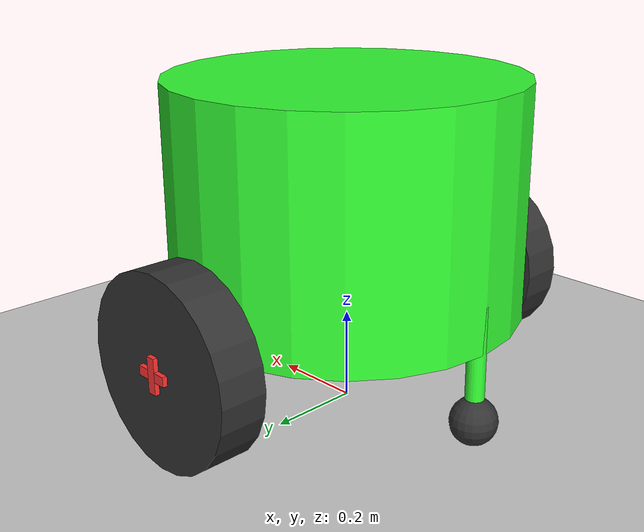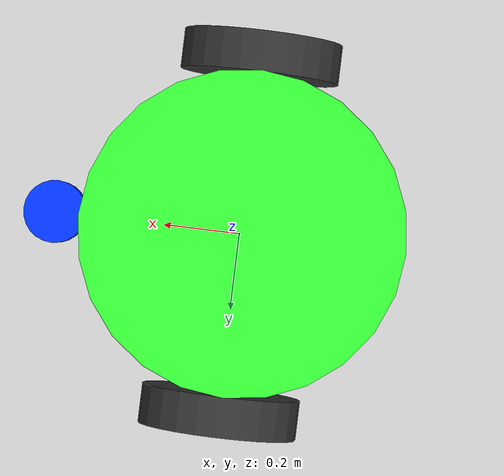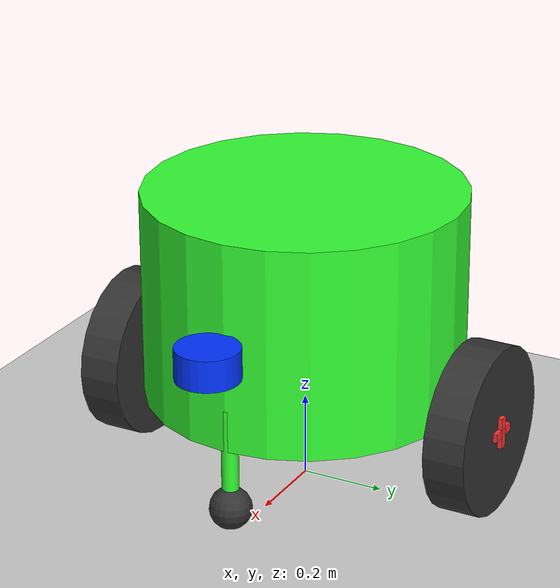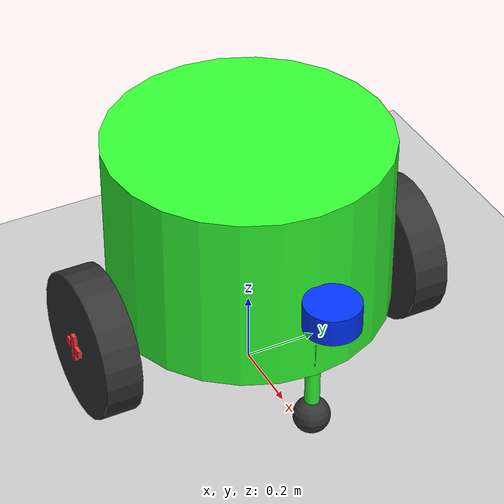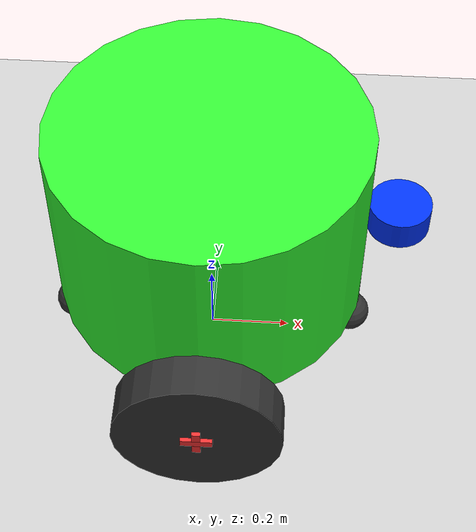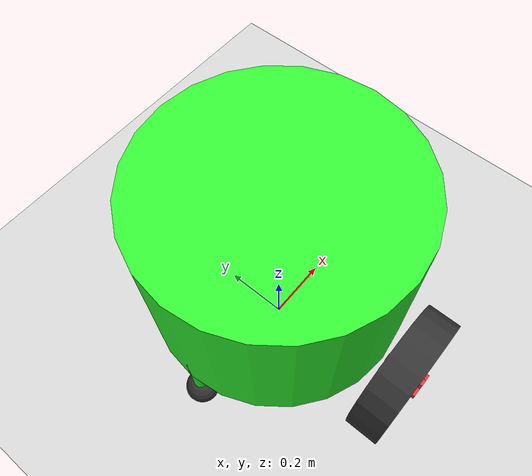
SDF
<?xml version="1.0"?>
<sdf version='1.11'>
  <world name='empty'>
    <physics name='1ms' type='ignored'>
      <max_step_size>0.001</max_step_size>
      <real_time_factor>1</real_time_factor>
      <real_time_update_rate>1000</real_time_update_rate>
    </physics>
    <plugin name='gz::sim::systems::Physics' filename='gz-sim-physics-system'/>
    <plugin name='gz::sim::systems::UserCommands' filename='gz-sim-user-commands-system'/>
    <plugin name='gz::sim::systems::SceneBroadcaster' filename='gz-sim-scene-broadcaster-system'/>
    <plugin name='gz::sim::systems::Contact' filename='gz-sim-contact-system'/>
    <gravity>0 0 -9.8</gravity>
    <magnetic_field>6e-06 2.3e-05 -4.2e-05</magnetic_field>
    <atmosphere type='adiabatic'/>

    <plugin filename="gz-sim-navsat-system" name="gz::sim::systems::NavSat"/>
    <spherical_coordinates>
      <surface_model>EARTH_WGS84</surface_model>
      <world_frame_orientation>ENU</world_frame_orientation>
      <latitude_deg>45.0</latitude_deg>
      <longitude_deg>-81.0</longitude_deg>
      <elevation>0.0</elevation>
      <heading_deg>0.0</heading_deg>
    </spherical_coordinates>

    <scene>
      <ambient>0.400000006 0.400000006 0.400000006 1</ambient>
      <background>0.699999988 0.699999988 0.699999988 1</background>
      <sky></sky>
      <shadows>false</shadows>
    </scene>
    <model name='ground_plane'>
      <static>true</static>
      <link name='link'>
        <collision name='collision'>
          <geometry>
            <plane>
              <normal>0 0 1</normal>
              <size>1000 1000</size>
            </plane>
          </geometry>
          <surface>
            <friction>
              <ode/>
            </friction>
            <bounce/>
            <contact/>
          </surface>
        </collision>
        <visual name='visual'>
          <geometry>
            <plane>
              <normal>0 0 1</normal>
              <size>1000 1000</size>
            </plane>
          </geometry>
          <material>
            <ambient>0.8 0.8 0.8 1</ambient>
            <diffuse>0.8 0.8 0.8 1</diffuse>
            <specular>0.8 0.8 0.8 1</specular>
          </material>
        </visual>
        <pose>0 0 0 0 -0 0</pose>
        <inertial>
          <pose>0 0 0 0 -0 0</pose>
          <mass>1</mass>
          <inertia>
            <ixx>1</ixx>
            <ixy>0</ixy>
            <ixz>0</ixz>
            <iyy>1</iyy>
            <iyz>0</iyz>
            <izz>1</izz>
          </inertia>
        </inertial>
        <enable_wind>false</enable_wind>
      </link>
      <pose>0 0 0 0 -0 0</pose>
      <self_collide>false</self_collide>
    </model>
    <light name='sun' type='directional'>
      <pose>0 0 10 0 -0 0</pose>
      <cast_shadows>true</cast_shadows>
      <intensity>1</intensity>
      <direction>-0.5 0.1 -0.9</direction>
      <diffuse>0.8 0.8 0.8 1</diffuse>
      <specular>0.2 0.2 0.2 1</specular>
      <attenuation>
        <range>1000</range>
        <linear>0.01</linear>
        <constant>0.90000000000000002</constant>
        <quadratic>0.001</quadratic>
      </attenuation>
      <spot>
        <inner_angle>0</inner_angle>
        <outer_angle>0</outer_angle>
        <falloff>0</falloff>
      </spot>
    </light>

    <model name="roundbot">
      <self_collide>true</self_collide>
      <pose>0 0 0 0 0 0</pose>
      <include merge="true">
        <uri>package://roundbot_description/models/roundbot</uri>
        <experimental:params>
            <sensor element_id="chassis" action="add" name="navsat_sensor" type="navsat">
              <gz_frame_id>base_footprint</gz_frame_id>
              <always_on>1</always_on>
              <update_rate>5</update_rate>
              <topic>navsat</topic>
            </sensor>
        </experimental:params>
      </include>
    </model>
  </world>
</sdf>

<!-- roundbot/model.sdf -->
<sdf version="1.11">
  <model name='diff_drive'>
    <link name="base_footprint">
      <pose>0 0 0 0 0 0</pose>
    </link>

    <link name="chassis">
      <pose>0 0 0.475 0 0 0</pose>

      <visual name="visual_chassis">
        <geometry>
          <cylinder>
            <radius>0.38</radius>
            <length>0.5</length>
          </cylinder>
        </geometry>

        <material>
          <ambient>0.2 1.0 0.2 1</ambient>
          <diffuse>0.2 1.0 0.2 1</diffuse>
          <specular>0.2 1.0 0.2 1</specular>
        </material>
      </visual>
      <visual name="front_caster_post">
        <pose>0.36 0 -0.25 0 0 0</pose>
        <geometry>
          <cylinder>
            <radius>0.02</radius>
            <length>0.2</length>
          </cylinder>
        </geometry>

        <material>
          <ambient>0.2 1.0 0.2 1</ambient>
          <diffuse>0.2 1.0 0.2 1</diffuse>
          <specular>0.2 1.0 0.2 1</specular>
        </material>
      </visual>
      <visual name="visual_front_caster">
        <pose>0.36 0 -0.4 0 0 0</pose>
        <geometry>
          <sphere>
            <radius>0.05</radius>
          </sphere>
        </geometry>

        <material>
          <ambient>0.2 0.2 0.2 1</ambient>
          <diffuse>0.2 0.2 0.2 1</diffuse>
          <specular>0.2 0.2 0.2 1</specular>
        </material>
      </visual>
      <visual name="rear_caster_post">
        <pose>-0.36 0 -0.25 0 0 0</pose>
        <geometry>
          <cylinder>
            <radius>0.02</radius>
            <length>0.2</length>
          </cylinder>
        </geometry>

        <material>
          <ambient>0.2 1.0 0.2 1</ambient>
          <diffuse>0.2 1.0 0.2 1</diffuse>
          <specular>0.2 1.0 0.2 1</specular>
        </material>
      </visual>
      <visual name="visual_rear_caster">
        <pose>-0.36 0 -0.4 0 0 0</pose>
        <geometry>
          <sphere>
            <radius>0.05</radius>
          </sphere>
        </geometry>

        <material>
          <ambient>0.2 0.2 0.2 1</ambient>
          <diffuse>0.2 0.2 0.2 1</diffuse>
          <specular>0.2 0.2 0.2 1</specular>
        </material>
      </visual>

      <collision name="collision_chassis">
        <geometry>
          <cylinder>
            <radius>0.38</radius>
            <length>0.5</length>
          </cylinder>
        </geometry>
      </collision>
      <collision name="collision_front_caster">
        <pose>0.36 0 -0.4 0 0 0</pose>
        <geometry>
          <sphere>
            <radius>0.05</radius>
          </sphere>
        </geometry>
        <surface>
          <friction>
            <ode>
              <mu>0</mu>
              <mu2>0</mu2>
            </ode>
          </friction>
        </surface>
      </collision>
      <collision name="collision_rear_caster">
        <pose>-0.36 0 -0.4 0 0 0</pose>
        <geometry>
          <sphere>
            <radius>0.05</radius>
          </sphere>
        </geometry>
        <surface>
          <friction>
            <ode>
              <mu>0</mu>
              <mu2>0</mu2>
            </ode>
          </friction>
        </surface>
      </collision>

      <inertial>
        <mass>5.0</mass>
        <inertia>
          <ixx>0.2847</ixx>
          <ixy>0</ixy>
          <ixz>0</ixz>
          <iyy>0.2847</iyy>
          <iyz>0</iyz>
          <izz>0.361</izz>
        </inertia>
      </inertial>
    </link>

    <link name="left_wheel">
      <pose>0 0.45 0.225 -1.5707963267948966 0 0</pose>

      <visual name="visual_left_wheel">
        <geometry>
          <cylinder>
            <radius>0.2</radius>
            <length>0.1</length>
          </cylinder>
        </geometry>

        <material>
          <ambient>0.2 0.2 0.2 1</ambient>
          <diffuse>0.2 0.2 0.2 1</diffuse>
          <specular>0.2 0.2 0.2 1</specular>
        </material>
      </visual>
      <visual name="visual_left_hub1">
        <geometry>
          <box>
            <size>0.02 0.075 0.12</size>
          </box>
        </geometry>

        <material>
          <ambient>1.0 0.2 0.2 1</ambient>
          <diffuse>1.0 0.2 0.2 1</diffuse>
          <specular>1.0 0.2 0.2 1</specular>
        </material>
      </visual>
      <visual name="visual_left_hub2">
        <geometry>
          <box>
            <size>0.075 0.02 0.12</size>
          </box>
        </geometry>

        <material>
          <ambient>1.0 0.2 0.2 1</ambient>
          <diffuse>1.0 0.2 0.2 1</diffuse>
          <specular>1.0 0.2 0.2 1</specular>
        </material>
      </visual>

      <collision name="collision_left_wheel">
        <geometry>
          <cylinder>
            <radius>0.2</radius>
            <length>0.1</length>
          </cylinder>
        </geometry>
      </collision>

      <inertial>
        <mass>1.0</mass>
        <inertia>
          <ixx>0.01</ixx>
          <ixy>0</ixy>
          <ixz>0</ixz>
          <iyy>0.01</iyy>
          <iyz>0</iyz>
          <izz>0.02</izz>
        </inertia>
      </inertial>
    </link>

    <link name="right_wheel">
      <pose>0 -0.45 0.225 -1.5707963267948966 0 0</pose>

      <visual name="visual_right_wheel">
        <geometry>
          <cylinder>
            <radius>0.2</radius>
            <length>0.1</length>
          </cylinder>
        </geometry>

        <material>
          <ambient>0.2 0.2 0.2 1</ambient>
          <diffuse>0.2 0.2 0.2 1</diffuse>
          <specular>0.2 0.2 0.2 1</specular>
        </material>
      </visual>
      <visual name="visual_right_hub1">
        <geometry>
          <box>
            <size>0.02 0.075 0.12</size>
          </box>
        </geometry>

        <material>
          <ambient>1.0 0.2 0.2 1</ambient>
          <diffuse>1.0 0.2 0.2 1</diffuse>
          <specular>1.0 0.2 0.2 1</specular>
        </material>
      </visual>
      <visual name="visual_right_hub2">
        <geometry>
          <box>
            <size>0.075 0.02 0.12</size>
          </box>
        </geometry>

        <material>
          <ambient>1.0 0.2 0.2 1</ambient>
          <diffuse>1.0 0.2 0.2 1</diffuse>
          <specular>1.0 0.2 0.2 1</specular>
        </material>
      </visual>

      <collision name="collision_right_wheel">
        <geometry>
          <cylinder>
            <radius>0.2</radius>
            <length>0.1</length>
          </cylinder>
        </geometry>
      </collision>

      <inertial>
        <mass>1.0</mass>
        <inertia>
          <ixx>0.01</ixx>
          <ixy>0</ixy>
          <ixz>0</ixz>
          <iyy>0.01</iyy>
          <iyz>0</iyz>
          <izz>0.02</izz>
        </inertia>
      </inertial>
    </link>

    <link name="lidar">
      <pose>0.45 0 0.475 0 0 0</pose>
      <visual name="visual_lidar">
        <geometry>
          <cylinder>
            <radius>0.075</radius>
            <length>0.075</length>
          </cylinder>
        </geometry>

        <material>
          <ambient>0.0 0.2 1.0 1</ambient>
          <diffuse>0.0 0.2 1.0 1</diffuse>
          <specular>0.0 0.2 1.0 1</specular>
        </material>
      </visual>
      <sensor name='gpu_lidar' type='gpu_lidar'>"
        <gz_frame_id>lidar</gz_frame_id>
        <pose>0 0 0 0 0 0</pose>
        <topic>scan</topic>
        <update_rate>10</update_rate>
        <ray>
            <scan>
                <horizontal>
                    <samples>640</samples>
                    <resolution>1</resolution>
                    <min_angle>-1.396263</min_angle>
                    <max_angle>1.396263</max_angle>
                </horizontal>
                <vertical>
                    <samples>1</samples>
                    <resolution>0.01</resolution>
                    <min_angle>0</min_angle>
                    <max_angle>0</max_angle>
                </vertical>
            </scan>
            <range>
                <min>0.08</min>
                <max>30.0</max>
                <resolution>0.01</resolution>
            </range>
        </ray>
        <always_on>1</always_on>
        <visualize>true</visualize>
      </sensor>
    </link>

    <joint name="left_wheel_joint" type="revolute">
      <parent>chassis</parent>
      <child>left_wheel</child>
      <axis>
        <xyz>0 0 1</xyz>
        <limit>
          <lower>-1.79769e+308</lower>
          <upper>1.79769e+308</upper>
        </limit>
      </axis>
    </joint>

    <joint name="chassis_joint" type="fixed">
      <parent>base_footprint</parent>
      <child>chassis</child>
    </joint>

    <joint name="lidar_joint" type="fixed">
      <parent>chassis</parent>
      <child>lidar</child>
    </joint>

    <joint name="right_wheel_joint" type="revolute">
      <parent>chassis</parent>
      <child>right_wheel</child>
      <axis>
        <xyz>0 0 1</xyz>
        <limit>
          <lower>-1.79769e+308</lower>
          <upper>1.79769e+308</upper>
        </limit>
      </axis>
    </joint>

    <plugin filename="RoundbotInterfacePlugin" name="roundbot_gazebo::RoundbotInterfacePlugin">
      <pub_tf>true</pub_tf>
    </plugin>

    <plugin filename="gz-sim-joint-state-publisher-system" name="gz::sim::systems::JointStatePublisher">
      <topic>/model/roundbot/joint_states</topic>
    </plugin>
  </model>
</sdf>
